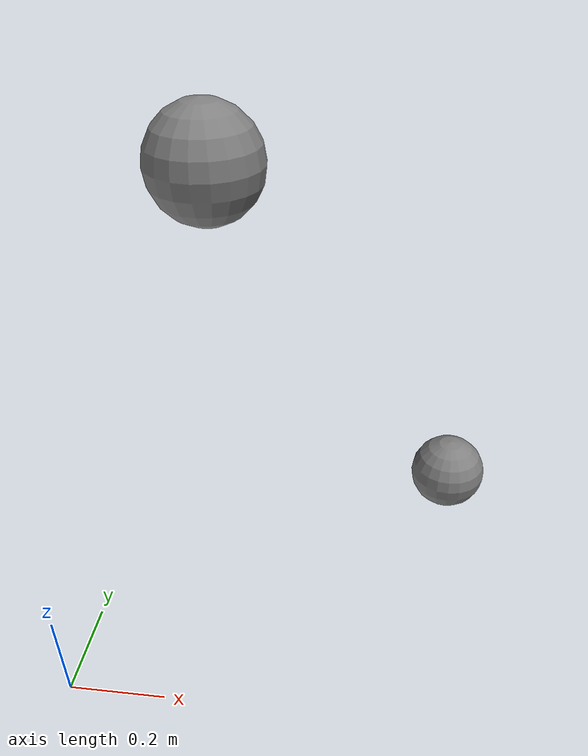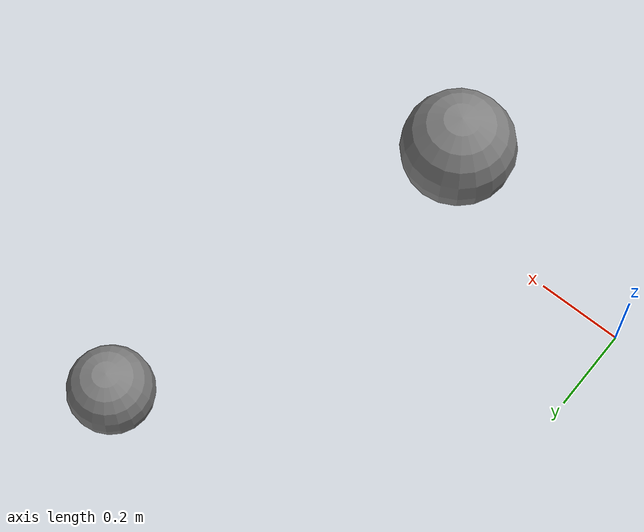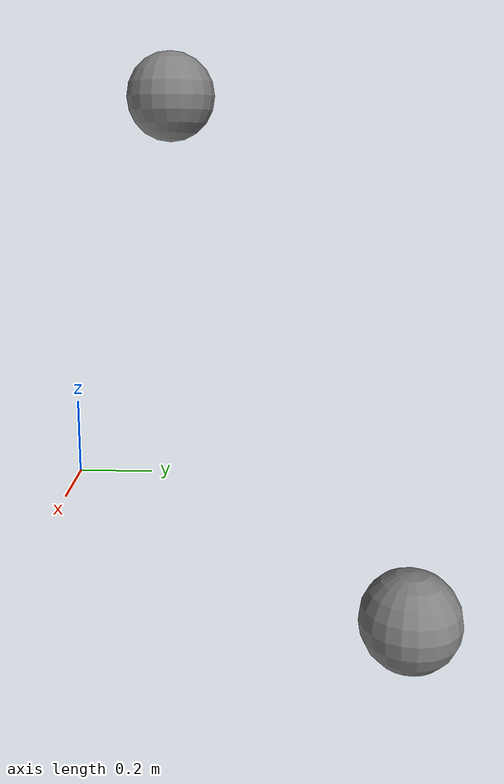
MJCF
<mujoco model="multi_joint_with_child">
            <option gravity="0 0 -9.81" timestep="0.001"/>
            <worldbody>
                <body name="base" pos="0 0 1">
                    <joint type="hinge" axis="1 0 0" name="h1"/>
                    <joint type="hinge" axis="0 1 0" name="h2"/>
                    <geom type="sphere" size="0.1" pos="0.3 0.3 0" mass="1.0"/>
                    <body name="child" pos="0.5 0.5 -1">
                        <joint type="hinge" axis="0 0 1" name="h3"/>
                        <geom type="sphere" size="0.1" pos="0.3 0.3 0" mass="1.0"/>
                    </body>
                </body>
            </worldbody>
        </mujoco>
